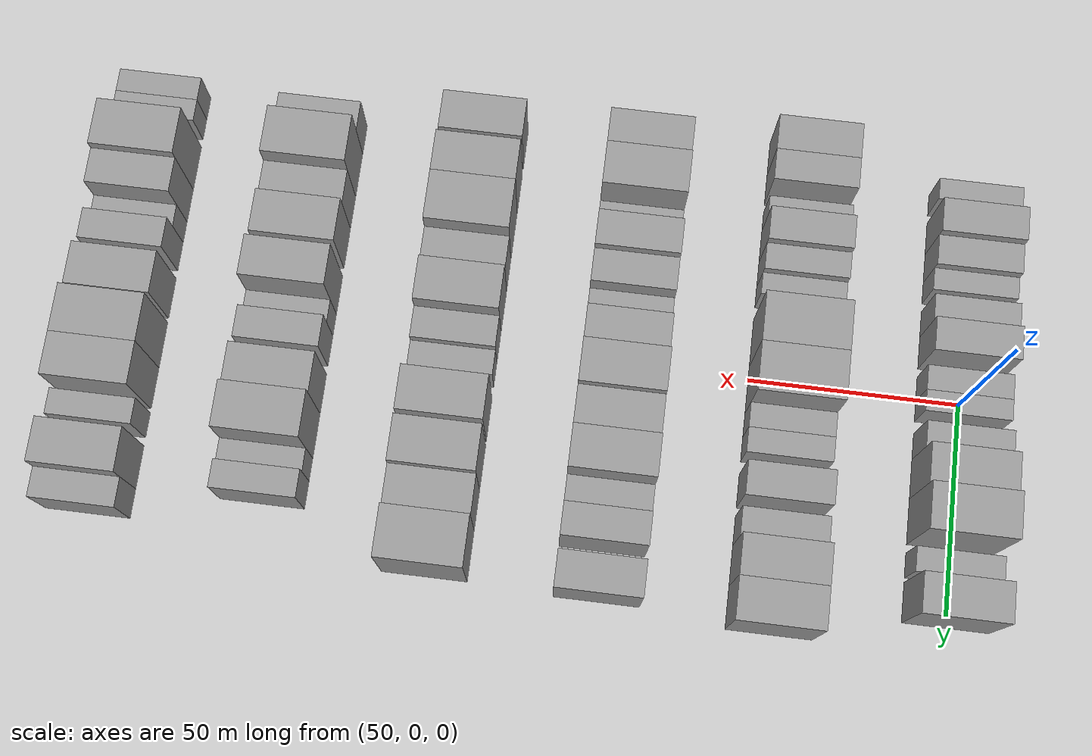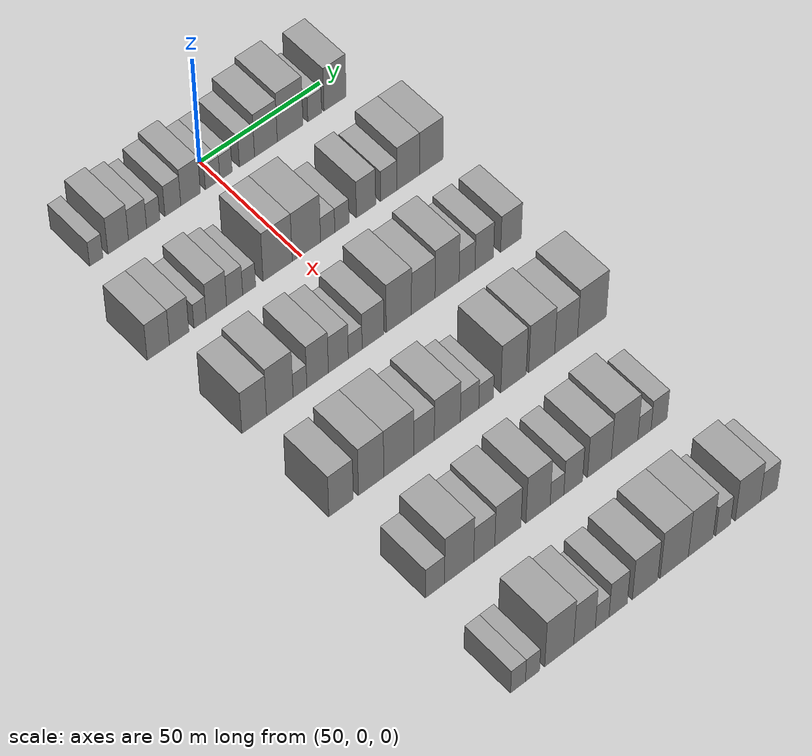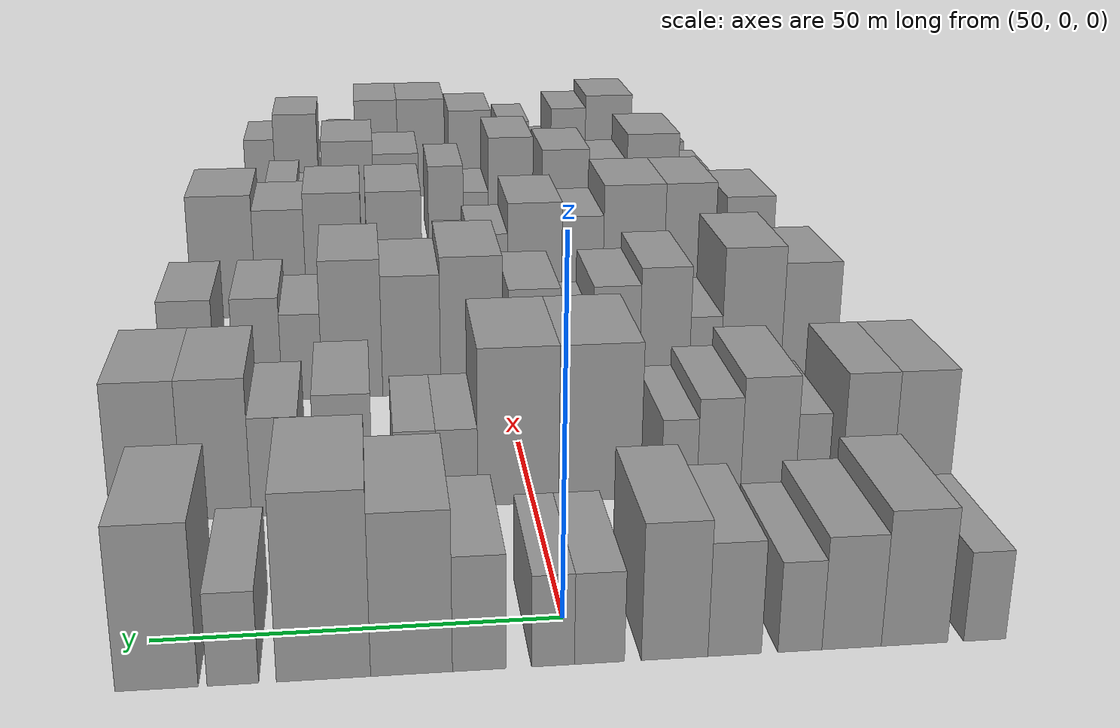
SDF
<sdf version="1.6">
 <world name="default">
  <model name="building_61">
   <static>1</static>
   <pose>50.0000 -49.7137 0 0.000000 0.000000 0.000000</pose>
   <link name="link">
    <pose>0 0 6.00 0 0 0</pose>
    <collision name="collision"><geometry><box><size>20.0000 5.2330 12.0000</size></box></geometry></collision>
    <visual name="visual">
     <cast_shadows>0</cast_shadows>
     <geometry><box><size>20.0000 5.2330 12.0000</size></box></geometry>
     <material>
      <script>
       <uri>model://grey_wall/materials/scripts</uri>
       <uri>model://grey_wall/materials/textures</uri>
       <name>vrc/grey_wall</name>
      </script>
     </material>
    </visual>
   </link>
  </model>
  <model name="building_62">
   <static>1</static>
   <pose>50.0000 -40.9994 0 0.000000 0.000000 0.000000</pose>
   <link name="link">
    <pose>0 0 9.00 0 0 0</pose>
    <collision name="collision"><geometry><box><size>20.0000 8.1956 18.0000</size></box></geometry></collision>
    <visual name="visual">
     <cast_shadows>0</cast_shadows>
     <geometry><box><size>20.0000 8.1956 18.0000</size></box></geometry>
     <material>
      <script>
       <uri>model://grey_wall/materials/scripts</uri>
       <uri>model://grey_wall/materials/textures</uri>
       <name>vrc/grey_wall</name>
      </script>
     </material>
    </visual>
   </link>
  </model>
  <model name="building_63">
   <static>1</static>
   <pose>50.0000 -33.2702 0 0.000000 0.000000 0.000000</pose>
   <link name="link">
    <pose>0 0 7.50 0 0 0</pose>
    <collision name="collision"><geometry><box><size>20.0000 7.2627 15.0000</size></box></geometry></collision>
    <visual name="visual">
     <cast_shadows>0</cast_shadows>
     <geometry><box><size>20.0000 7.2627 15.0000</size></box></geometry>
     <material>
      <script>
       <uri>model://grey_wall/materials/scripts</uri>
       <uri>model://grey_wall/materials/textures</uri>
       <name>vrc/grey_wall</name>
      </script>
     </material>
    </visual>
   </link>
  </model>
  <model name="building_64">
   <static>1</static>
   <pose>50.0000 -26.9642 0 0.000000 0.000000 0.000000</pose>
   <link name="link">
    <pose>0 0 6.00 0 0 0</pose>
    <collision name="collision"><geometry><box><size>20.0000 5.3493 12.0000</size></box></geometry></collision>
    <visual name="visual">
     <cast_shadows>0</cast_shadows>
     <geometry><box><size>20.0000 5.3493 12.0000</size></box></geometry>
     <material>
      <script>
       <uri>model://grey_wall/materials/scripts</uri>
       <uri>model://grey_wall/materials/textures</uri>
       <name>vrc/grey_wall</name>
      </script>
     </material>
    </visual>
   </link>
  </model>
  <model name="building_65">
   <static>1</static>
   <pose>50.0000 -19.0683 0 0.000000 0.000000 0.000000</pose>
   <link name="link">
    <pose>0 0 7.50 0 0 0</pose>
    <collision name="collision"><geometry><box><size>20.0000 6.4423 15.0000</size></box></geometry></collision>
    <visual name="visual">
     <cast_shadows>0</cast_shadows>
     <geometry><box><size>20.0000 6.4423 15.0000</size></box></geometry>
     <material>
      <script>
       <uri>model://grey_wall/materials/scripts</uri>
       <uri>model://grey_wall/materials/textures</uri>
       <name>vrc/grey_wall</name>
      </script>
     </material>
    </visual>
   </link>
  </model>
  <model name="building_66">
   <static>1</static>
   <pose>50.0000 -11.8717 0 0.000000 0.000000 0.000000</pose>
   <link name="link">
    <pose>0 0 9.00 0 0 0</pose>
    <collision name="collision"><geometry><box><size>20.0000 7.9509 18.0000</size></box></geometry></collision>
    <visual name="visual">
     <cast_shadows>0</cast_shadows>
     <geometry><box><size>20.0000 7.9509 18.0000</size></box></geometry>
     <material>
      <script>
       <uri>model://grey_wall/materials/scripts</uri>
       <uri>model://grey_wall/materials/textures</uri>
       <name>vrc/grey_wall</name>
      </script>
     </material>
    </visual>
   </link>
  </model>
  <model name="building_67">
   <static>1</static>
   <pose>50.0000 -2.9251 0 0.000000 0.000000 0.000000</pose>
   <link name="link">
    <pose>0 0 6.00 0 0 0</pose>
    <collision name="collision"><geometry><box><size>20.0000 5.9424 12.0000</size></box></geometry></collision>
    <visual name="visual">
     <cast_shadows>0</cast_shadows>
     <geometry><box><size>20.0000 5.9424 12.0000</size></box></geometry>
     <material>
      <script>
       <uri>model://grey_wall/materials/scripts</uri>
       <uri>model://grey_wall/materials/textures</uri>
       <name>vrc/grey_wall</name>
      </script>
     </material>
    </visual>
   </link>
  </model>
  <model name="building_68">
   <static>1</static>
   <pose>50.0000 2.5611 0 0.000000 0.000000 0.000000</pose>
   <link name="link">
    <pose>0 0 6.00 0 0 0</pose>
    <collision name="collision"><geometry><box><size>20.0000 5.0298 12.0000</size></box></geometry></collision>
    <visual name="visual">
     <cast_shadows>0</cast_shadows>
     <geometry><box><size>20.0000 5.0298 12.0000</size></box></geometry>
     <material>
      <script>
       <uri>model://grey_wall/materials/scripts</uri>
       <uri>model://grey_wall/materials/textures</uri>
       <name>vrc/grey_wall</name>
      </script>
     </material>
    </visual>
   </link>
  </model>
  <model name="building_69">
   <static>1</static>
   <pose>50.0000 11.1921 0 0.000000 0.000000 0.000000</pose>
   <link name="link">
    <pose>0 0 7.50 0 0 0</pose>
    <collision name="collision"><geometry><box><size>20.0000 6.2323 15.0000</size></box></geometry></collision>
    <visual name="visual">
     <cast_shadows>0</cast_shadows>
     <geometry><box><size>20.0000 6.2323 15.0000</size></box></geometry>
     <material>
      <script>
       <uri>model://grey_wall/materials/scripts</uri>
       <uri>model://grey_wall/materials/textures</uri>
       <name>vrc/grey_wall</name>
      </script>
     </material>
    </visual>
   </link>
  </model>
  <model name="building_70">
   <static>1</static>
   <pose>50.0000 19.0318 0 0.000000 0.000000 0.000000</pose>
   <link name="link">
    <pose>0 0 10.50 0 0 0</pose>
    <collision name="collision"><geometry><box><size>20.0000 9.4470 21.0000</size></box></geometry></collision>
    <visual name="visual">
     <cast_shadows>0</cast_shadows>
     <geometry><box><size>20.0000 9.4470 21.0000</size></box></geometry>
     <material>
      <script>
       <uri>model://grey_wall/materials/scripts</uri>
       <uri>model://grey_wall/materials/textures</uri>
       <name>vrc/grey_wall</name>
      </script>
     </material>
    </visual>
   </link>
  </model>
  <model name="building_71">
   <static>1</static>
   <pose>50.0000 29.1392 0 0.000000 0.000000 0.000000</pose>
   <link name="link">
    <pose>0 0 12.00 0 0 0</pose>
    <collision name="collision"><geometry><box><size>20.0000 10.7678 24.0000</size></box></geometry></collision>
    <visual name="visual">
     <cast_shadows>0</cast_shadows>
     <geometry><box><size>20.0000 10.7678 24.0000</size></box></geometry>
     <material>
      <script>
       <uri>model://grey_wall/materials/scripts</uri>
       <uri>model://grey_wall/materials/textures</uri>
       <name>vrc/grey_wall</name>
      </script>
     </material>
    </visual>
   </link>
  </model>
  <model name="building_72">
   <static>1</static>
   <pose>50.0000 39.4350 0 0.000000 0.000000 0.000000</pose>
   <link name="link">
    <pose>0 0 6.00 0 0 0</pose>
    <collision name="collision"><geometry><box><size>20.0000 5.8238 12.0000</size></box></geometry></collision>
    <visual name="visual">
     <cast_shadows>0</cast_shadows>
     <geometry><box><size>20.0000 5.8238 12.0000</size></box></geometry>
     <material>
      <script>
       <uri>model://grey_wall/materials/scripts</uri>
       <uri>model://grey_wall/materials/textures</uri>
       <name>vrc/grey_wall</name>
      </script>
     </material>
    </visual>
   </link>
  </model>
  <model name="building_73">
   <static>1</static>
   <pose>50.0000 48.0004 0 0.000000 0.000000 0.000000</pose>
   <link name="link">
    <pose>0 0 10.50 0 0 0</pose>
    <collision name="collision"><geometry><box><size>20.0000 9.3071 21.0000</size></box></geometry></collision>
    <visual name="visual">
     <cast_shadows>0</cast_shadows>
     <geometry><box><size>20.0000 9.3071 21.0000</size></box></geometry>
     <material>
      <script>
       <uri>model://grey_wall/materials/scripts</uri>
       <uri>model://grey_wall/materials/textures</uri>
       <name>vrc/grey_wall</name>
      </script>
     </material>
    </visual>
   </link>
  </model>
  <model name="building_201">
   <static>1</static>
   <pose>90.0000 -56.9753 0 0.000000 0.000000 0.000000</pose>
   <link name="link">
    <pose>0 0 9.00 0 0 0</pose>
    <collision name="collision"><geometry><box><size>20.0000 8.7336 18.0000</size></box></geometry></collision>
    <visual name="visual">
     <cast_shadows>0</cast_shadows>
     <geometry><box><size>20.0000 8.7336 18.0000</size></box></geometry>
     <material>
      <script>
       <uri>model://grey_wall/materials/scripts</uri>
       <uri>model://grey_wall/materials/textures</uri>
       <name>vrc/grey_wall</name>
      </script>
     </material>
    </visual>
   </link>
  </model>
  <model name="building_202">
   <static>1</static>
   <pose>90.0000 -48.7742 0 0.000000 0.000000 0.000000</pose>
   <link name="link">
    <pose>0 0 9.00 0 0 0</pose>
    <collision name="collision"><geometry><box><size>20.0000 7.6685 18.0000</size></box></geometry></collision>
    <visual name="visual">
     <cast_shadows>0</cast_shadows>
     <geometry><box><size>20.0000 7.6685 18.0000</size></box></geometry>
     <material>
      <script>
       <uri>model://grey_wall/materials/scripts</uri>
       <uri>model://grey_wall/materials/textures</uri>
       <name>vrc/grey_wall</name>
      </script>
     </material>
    </visual>
   </link>
  </model>
  <model name="building_203">
   <static>1</static>
   <pose>90.0000 -40.5133 0 0.000000 0.000000 0.000000</pose>
   <link name="link">
    <pose>0 0 6.00 0 0 0</pose>
    <collision name="collision"><geometry><box><size>20.0000 4.8533 12.0000</size></box></geometry></collision>
    <visual name="visual">
     <cast_shadows>0</cast_shadows>
     <geometry><box><size>20.0000 4.8533 12.0000</size></box></geometry>
     <material>
      <script>
       <uri>model://grey_wall/materials/scripts</uri>
       <uri>model://grey_wall/materials/textures</uri>
       <name>vrc/grey_wall</name>
      </script>
     </material>
    </visual>
   </link>
  </model>
  <model name="building_204">
   <static>1</static>
   <pose>90.0000 -34.0254 0 0.000000 0.000000 0.000000</pose>
   <link name="link">
    <pose>0 0 9.00 0 0 0</pose>
    <collision name="collision"><geometry><box><size>20.0000 8.1226 18.0000</size></box></geometry></collision>
    <visual name="visual">
     <cast_shadows>0</cast_shadows>
     <geometry><box><size>20.0000 8.1226 18.0000</size></box></geometry>
     <material>
      <script>
       <uri>model://grey_wall/materials/scripts</uri>
       <uri>model://grey_wall/materials/textures</uri>
       <name>vrc/grey_wall</name>
      </script>
     </material>
    </visual>
   </link>
  </model>
  <model name="building_205">
   <static>1</static>
   <pose>90.0000 -26.7587 0 0.000000 0.000000 0.000000</pose>
   <link name="link">
    <pose>0 0 7.50 0 0 0</pose>
    <collision name="collision"><geometry><box><size>20.0000 6.4108 15.0000</size></box></geometry></collision>
    <visual name="visual">
     <cast_shadows>0</cast_shadows>
     <geometry><box><size>20.0000 6.4108 15.0000</size></box></geometry>
     <material>
      <script>
       <uri>model://grey_wall/materials/scripts</uri>
       <uri>model://grey_wall/materials/textures</uri>
       <name>vrc/grey_wall</name>
      </script>
     </material>
    </visual>
   </link>
  </model>
  <model name="building_206">
   <static>1</static>
   <pose>90.0000 -20.9501 0 0.000000 0.000000 0.000000</pose>
   <link name="link">
    <pose>0 0 6.00 0 0 0</pose>
    <collision name="collision"><geometry><box><size>20.0000 5.2064 12.0000</size></box></geometry></collision>
    <visual name="visual">
     <cast_shadows>0</cast_shadows>
     <geometry><box><size>20.0000 5.2064 12.0000</size></box></geometry>
     <material>
      <script>
       <uri>model://grey_wall/materials/scripts</uri>
       <uri>model://grey_wall/materials/textures</uri>
       <name>vrc/grey_wall</name>
      </script>
     </material>
    </visual>
   </link>
  </model>
  <model name="building_207">
   <static>1</static>
   <pose>90.0000 -9.4413 0 0.000000 0.000000 0.000000</pose>
   <link name="link">
    <pose>0 0 12.00 0 0 0</pose>
    <collision name="collision"><geometry><box><size>20.0000 11.8111 24.0000</size></box></geometry></collision>
    <visual name="visual">
     <cast_shadows>0</cast_shadows>
     <geometry><box><size>20.0000 11.8111 24.0000</size></box></geometry>
     <material>
      <script>
       <uri>model://grey_wall/materials/scripts</uri>
       <uri>model://grey_wall/materials/textures</uri>
       <name>vrc/grey_wall</name>
      </script>
     </material>
    </visual>
   </link>
  </model>
  <model name="building_208">
   <static>1</static>
   <pose>90.0000 2.2526 0 0.000000 0.000000 0.000000</pose>
   <link name="link">
    <pose>0 0 12.00 0 0 0</pose>
    <collision name="collision"><geometry><box><size>20.0000 11.5766 24.0000</size></box></geometry></collision>
    <visual name="visual">
     <cast_shadows>0</cast_shadows>
     <geometry><box><size>20.0000 11.5766 24.0000</size></box></geometry>
     <material>
      <script>
       <uri>model://grey_wall/materials/scripts</uri>
       <uri>model://grey_wall/materials/textures</uri>
       <name>vrc/grey_wall</name>
      </script>
     </material>
    </visual>
   </link>
  </model>
  <model name="building_209">
   <static>1</static>
   <pose>90.0000 10.9631 0 0.000000 0.000000 0.000000</pose>
   <link name="link">
    <pose>0 0 6.00 0 0 0</pose>
    <collision name="collision"><geometry><box><size>20.0000 5.8444 12.0000</size></box></geometry></collision>
    <visual name="visual">
     <cast_shadows>0</cast_shadows>
     <geometry><box><size>20.0000 5.8444 12.0000</size></box></geometry>
     <material>
      <script>
       <uri>model://grey_wall/materials/scripts</uri>
       <uri>model://grey_wall/materials/textures</uri>
       <name>vrc/grey_wall</name>
      </script>
     </material>
    </visual>
   </link>
  </model>
  <model name="building_210">
   <static>1</static>
   <pose>90.0000 16.8318 0 0.000000 0.000000 0.000000</pose>
   <link name="link">
    <pose>0 0 6.00 0 0 0</pose>
    <collision name="collision"><geometry><box><size>20.0000 5.8929 12.0000</size></box></geometry></collision>
    <visual name="visual">
     <cast_shadows>0</cast_shadows>
     <geometry><box><size>20.0000 5.8929 12.0000</size></box></geometry>
     <material>
      <script>
       <uri>model://grey_wall/materials/scripts</uri>
       <uri>model://grey_wall/materials/textures</uri>
       <name>vrc/grey_wall</name>
      </script>
     </material>
    </visual>
   </link>
  </model>
  <model name="building_211">
   <static>1</static>
   <pose>90.0000 26.8018 0 0.000000 0.000000 0.000000</pose>
   <link name="link">
    <pose>0 0 9.00 0 0 0</pose>
    <collision name="collision"><geometry><box><size>20.0000 8.0470 18.0000</size></box></geometry></collision>
    <visual name="visual">
     <cast_shadows>0</cast_shadows>
     <geometry><box><size>20.0000 8.0470 18.0000</size></box></geometry>
     <material>
      <script>
       <uri>model://grey_wall/materials/scripts</uri>
       <uri>model://grey_wall/materials/textures</uri>
       <name>vrc/grey_wall</name>
      </script>
     </material>
    </visual>
   </link>
  </model>
  <model name="building_212">
   <static>1</static>
   <pose>90.0000 36.2818 0 0.000000 0.000000 0.000000</pose>
   <link name="link">
    <pose>0 0 7.50 0 0 0</pose>
    <collision name="collision"><geometry><box><size>20.0000 6.9131 15.0000</size></box></geometry></collision>
    <visual name="visual">
     <cast_shadows>0</cast_shadows>
     <geometry><box><size>20.0000 6.9131 15.0000</size></box></geometry>
     <material>
      <script>
       <uri>model://grey_wall/materials/scripts</uri>
       <uri>model://grey_wall/materials/textures</uri>
       <name>vrc/grey_wall</name>
      </script>
     </material>
    </visual>
   </link>
  </model>
  <model name="building_213">
   <static>1</static>
   <pose>90.0000 44.4817 0 0.000000 0.000000 0.000000</pose>
   <link name="link">
    <pose>0 0 10.50 0 0 0</pose>
    <collision name="collision"><geometry><box><size>20.0000 9.4865 21.0000</size></box></geometry></collision>
    <visual name="visual">
     <cast_shadows>0</cast_shadows>
     <geometry><box><size>20.0000 9.4865 21.0000</size></box></geometry>
     <material>
      <script>
       <uri>model://grey_wall/materials/scripts</uri>
       <uri>model://grey_wall/materials/textures</uri>
       <name>vrc/grey_wall</name>
      </script>
     </material>
    </visual>
   </link>
  </model>
  <model name="building_214">
   <static>1</static>
   <pose>90.0000 54.1620 0 0.000000 0.000000 0.000000</pose>
   <link name="link">
    <pose>0 0 10.50 0 0 0</pose>
    <collision name="collision"><geometry><box><size>20.0000 9.8741 21.0000</size></box></geometry></collision>
    <visual name="visual">
     <cast_shadows>0</cast_shadows>
     <geometry><box><size>20.0000 9.8741 21.0000</size></box></geometry>
     <material>
      <script>
       <uri>model://grey_wall/materials/scripts</uri>
       <uri>model://grey_wall/materials/textures</uri>
       <name>vrc/grey_wall</name>
      </script>
     </material>
    </visual>
   </link>
  </model>
  <model name="building_339">
   <static>1</static>
   <pose>130.0000 -52.0006 0 0.000000 0.000000 0.000000</pose>
   <link name="link">
    <pose>0 0 10.50 0 0 0</pose>
    <collision name="collision"><geometry><box><size>20.0000 9.7025 21.0000</size></box></geometry></collision>
    <visual name="visual">
     <cast_shadows>0</cast_shadows>
     <geometry><box><size>20.0000 9.7025 21.0000</size></box></geometry>
     <material>
      <script>
       <uri>model://grey_wall/materials/scripts</uri>
       <uri>model://grey_wall/materials/textures</uri>
       <name>vrc/grey_wall</name>
      </script>
     </material>
    </visual>
   </link>
  </model>
  <model name="building_340">
   <static>1</static>
   <pose>130.0000 -41.9264 0 0.000000 0.000000 0.000000</pose>
   <link name="link">
    <pose>0 0 12.00 0 0 0</pose>
    <collision name="collision"><geometry><box><size>20.0000 10.4460 24.0000</size></box></geometry></collision>
    <visual name="visual">
     <cast_shadows>0</cast_shadows>
     <geometry><box><size>20.0000 10.4460 24.0000</size></box></geometry>
     <material>
      <script>
       <uri>model://grey_wall/materials/scripts</uri>
       <uri>model://grey_wall/materials/textures</uri>
       <name>vrc/grey_wall</name>
      </script>
     </material>
    </visual>
   </link>
  </model>
  <model name="building_341">
   <static>1</static>
   <pose>130.0000 -33.9825 0 0.000000 0.000000 0.000000</pose>
   <link name="link">
    <pose>0 0 6.00 0 0 0</pose>
    <collision name="collision"><geometry><box><size>20.0000 5.4418 12.0000</size></box></geometry></collision>
    <visual name="visual">
     <cast_shadows>0</cast_shadows>
     <geometry><box><size>20.0000 5.4418 12.0000</size></box></geometry>
     <material>
      <script>
       <uri>model://grey_wall/materials/scripts</uri>
       <uri>model://grey_wall/materials/textures</uri>
       <name>vrc/grey_wall</name>
      </script>
     </material>
    </visual>
   </link>
  </model>
  <model name="building_342">
   <static>1</static>
   <pose>130.0000 -26.9742 0 0.000000 0.000000 0.000000</pose>
   <link name="link">
    <pose>0 0 10.50 0 0 0</pose>
    <collision name="collision"><geometry><box><size>20.0000 8.5747 21.0000</size></box></geometry></collision>
    <visual name="visual">
     <cast_shadows>0</cast_shadows>
     <geometry><box><size>20.0000 8.5747 21.0000</size></box></geometry>
     <material>
      <script>
       <uri>model://grey_wall/materials/scripts</uri>
       <uri>model://grey_wall/materials/textures</uri>
       <name>vrc/grey_wall</name>
      </script>
     </material>
    </visual>
   </link>
  </model>
  <model name="building_343">
   <static>1</static>
   <pose>130.0000 -18.7017 0 0.000000 0.000000 0.000000</pose>
   <link name="link">
    <pose>0 0 9.00 0 0 0</pose>
    <collision name="collision"><geometry><box><size>20.0000 7.9704 18.0000</size></box></geometry></collision>
    <visual name="visual">
     <cast_shadows>0</cast_shadows>
     <geometry><box><size>20.0000 7.9704 18.0000</size></box></geometry>
     <material>
      <script>
       <uri>model://grey_wall/materials/scripts</uri>
       <uri>model://grey_wall/materials/textures</uri>
       <name>vrc/grey_wall</name>
      </script>
     </material>
    </visual>
   </link>
  </model>
  <model name="building_344">
   <static>1</static>
   <pose>130.0000 -11.9334 0 0.000000 0.000000 0.000000</pose>
   <link name="link">
    <pose>0 0 6.00 0 0 0</pose>
    <collision name="collision"><geometry><box><size>20.0000 5.5663 12.0000</size></box></geometry></collision>
    <visual name="visual">
     <cast_shadows>0</cast_shadows>
     <geometry><box><size>20.0000 5.5663 12.0000</size></box></geometry>
     <material>
      <script>
       <uri>model://grey_wall/materials/scripts</uri>
       <uri>model://grey_wall/materials/textures</uri>
       <name>vrc/grey_wall</name>
      </script>
     </material>
    </visual>
   </link>
  </model>
  <model name="building_345">
   <static>1</static>
   <pose>130.0000 -4.7817 0 0.000000 0.000000 0.000000</pose>
   <link name="link">
    <pose>0 0 9.00 0 0 0</pose>
    <collision name="collision"><geometry><box><size>20.0000 8.7371 18.0000</size></box></geometry></collision>
    <visual name="visual">
     <cast_shadows>0</cast_shadows>
     <geometry><box><size>20.0000 8.7371 18.0000</size></box></geometry>
     <material>
      <script>
       <uri>model://grey_wall/materials/scripts</uri>
       <uri>model://grey_wall/materials/textures</uri>
       <name>vrc/grey_wall</name>
      </script>
     </material>
    </visual>
   </link>
  </model>
  <model name="building_346">
   <static>1</static>
   <pose>130.0000 5.7412 0 0.000000 0.000000 0.000000</pose>
   <link name="link">
    <pose>0 0 12.00 0 0 0</pose>
    <collision name="collision"><geometry><box><size>20.0000 10.3087 24.0000</size></box></geometry></collision>
    <visual name="visual">
     <cast_shadows>0</cast_shadows>
     <geometry><box><size>20.0000 10.3087 24.0000</size></box></geometry>
     <material>
      <script>
       <uri>model://grey_wall/materials/scripts</uri>
       <uri>model://grey_wall/materials/textures</uri>
       <name>vrc/grey_wall</name>
      </script>
     </material>
    </visual>
   </link>
  </model>
  <model name="building_347">
   <static>1</static>
   <pose>130.0000 15.7295 0 0.000000 0.000000 0.000000</pose>
   <link name="link">
    <pose>0 0 10.50 0 0 0</pose>
    <collision name="collision"><geometry><box><size>20.0000 9.6678 21.0000</size></box></geometry></collision>
    <visual name="visual">
     <cast_shadows>0</cast_shadows>
     <geometry><box><size>20.0000 9.6678 21.0000</size></box></geometry>
     <material>
      <script>
       <uri>model://grey_wall/materials/scripts</uri>
       <uri>model://grey_wall/materials/textures</uri>
       <name>vrc/grey_wall</name>
      </script>
     </material>
    </visual>
   </link>
  </model>
  <model name="building_348">
   <static>1</static>
   <pose>130.0000 25.5484 0 0.000000 0.000000 0.000000</pose>
   <link name="link">
    <pose>0 0 12.00 0 0 0</pose>
    <collision name="collision"><geometry><box><size>20.0000 9.9700 24.0000</size></box></geometry></collision>
    <visual name="visual">
     <cast_shadows>0</cast_shadows>
     <geometry><box><size>20.0000 9.9700 24.0000</size></box></geometry>
     <material>
      <script>
       <uri>model://grey_wall/materials/scripts</uri>
       <uri>model://grey_wall/materials/textures</uri>
       <name>vrc/grey_wall</name>
      </script>
     </material>
    </visual>
   </link>
  </model>
  <model name="building_349">
   <static>1</static>
   <pose>130.0000 33.8254 0 0.000000 0.000000 0.000000</pose>
   <link name="link">
    <pose>0 0 7.50 0 0 0</pose>
    <collision name="collision"><geometry><box><size>20.0000 6.5841 15.0000</size></box></geometry></collision>
    <visual name="visual">
     <cast_shadows>0</cast_shadows>
     <geometry><box><size>20.0000 6.5841 15.0000</size></box></geometry>
     <material>
      <script>
       <uri>model://grey_wall/materials/scripts</uri>
       <uri>model://grey_wall/materials/textures</uri>
       <name>vrc/grey_wall</name>
      </script>
     </material>
    </visual>
   </link>
  </model>
  <model name="building_350">
   <static>1</static>
   <pose>130.0000 40.9963 0 0.000000 0.000000 0.000000</pose>
   <link name="link">
    <pose>0 0 9.00 0 0 0</pose>
    <collision name="collision"><geometry><box><size>20.0000 7.7577 18.0000</size></box></geometry></collision>
    <visual name="visual">
     <cast_shadows>0</cast_shadows>
     <geometry><box><size>20.0000 7.7577 18.0000</size></box></geometry>
     <material>
      <script>
       <uri>model://grey_wall/materials/scripts</uri>
       <uri>model://grey_wall/materials/textures</uri>
       <name>vrc/grey_wall</name>
      </script>
     </material>
    </visual>
   </link>
  </model>
  <model name="building_351">
   <static>1</static>
   <pose>130.0000 52.2094 0 0.000000 0.000000 0.000000</pose>
   <link name="link">
    <pose>0 0 9.00 0 0 0</pose>
    <collision name="collision"><geometry><box><size>20.0000 8.6685 18.0000</size></box></geometry></collision>
    <visual name="visual">
     <cast_shadows>0</cast_shadows>
     <geometry><box><size>20.0000 8.6685 18.0000</size></box></geometry>
     <material>
      <script>
       <uri>model://grey_wall/materials/scripts</uri>
       <uri>model://grey_wall/materials/textures</uri>
       <name>vrc/grey_wall</name>
      </script>
     </material>
    </visual>
   </link>
  </model>
  <model name="building_480">
   <static>1</static>
   <pose>170.0000 -51.7140 0 0.000000 0.000000 0.000000</pose>
   <link name="link">
    <pose>0 0 10.50 0 0 0</pose>
    <collision name="collision"><geometry><box><size>20.0000 9.5417 21.0000</size></box></geometry></collision>
    <visual name="visual">
     <cast_shadows>0</cast_shadows>
     <geometry><box><size>20.0000 9.5417 21.0000</size></box></geometry>
     <material>
      <script>
       <uri>model://grey_wall/materials/scripts</uri>
       <uri>model://grey_wall/materials/textures</uri>
       <name>vrc/grey_wall</name>
      </script>
     </material>
    </visual>
   </link>
  </model>
  <model name="building_481">
   <static>1</static>
   <pose>170.0000 -39.9706 0 0.000000 0.000000 0.000000</pose>
   <link name="link">
    <pose>0 0 12.00 0 0 0</pose>
    <collision name="collision"><geometry><box><size>20.0000 9.9451 24.0000</size></box></geometry></collision>
    <visual name="visual">
     <cast_shadows>0</cast_shadows>
     <geometry><box><size>20.0000 9.9451 24.0000</size></box></geometry>
     <material>
      <script>
       <uri>model://grey_wall/materials/scripts</uri>
       <uri>model://grey_wall/materials/textures</uri>
       <name>vrc/grey_wall</name>
      </script>
     </material>
    </visual>
   </link>
  </model>
  <model name="building_482">
   <static>1</static>
   <pose>170.0000 -29.0029 0 0.000000 0.000000 0.000000</pose>
   <link name="link">
    <pose>0 0 12.00 0 0 0</pose>
    <collision name="collision"><geometry><box><size>20.0000 11.9903 24.0000</size></box></geometry></collision>
    <visual name="visual">
     <cast_shadows>0</cast_shadows>
     <geometry><box><size>20.0000 11.9903 24.0000</size></box></geometry>
     <material>
      <script>
       <uri>model://grey_wall/materials/scripts</uri>
       <uri>model://grey_wall/materials/textures</uri>
       <name>vrc/grey_wall</name>
      </script>
     </material>
    </visual>
   </link>
  </model>
  <model name="building_483">
   <static>1</static>
   <pose>170.0000 -18.9657 0 0.000000 0.000000 0.000000</pose>
   <link name="link">
    <pose>0 0 9.00 0 0 0</pose>
    <collision name="collision"><geometry><box><size>20.0000 8.0840 18.0000</size></box></geometry></collision>
    <visual name="visual">
     <cast_shadows>0</cast_shadows>
     <geometry><box><size>20.0000 8.0840 18.0000</size></box></geometry>
     <material>
      <script>
       <uri>model://grey_wall/materials/scripts</uri>
       <uri>model://grey_wall/materials/textures</uri>
       <name>vrc/grey_wall</name>
      </script>
     </material>
    </visual>
   </link>
  </model>
  <model name="building_484">
   <static>1</static>
   <pose>170.0000 -9.6862 0 0.000000 0.000000 0.000000</pose>
   <link name="link">
    <pose>0 0 10.50 0 0 0</pose>
    <collision name="collision"><geometry><box><size>20.0000 10.4750 21.0000</size></box></geometry></collision>
    <visual name="visual">
     <cast_shadows>0</cast_shadows>
     <geometry><box><size>20.0000 10.4750 21.0000</size></box></geometry>
     <material>
      <script>
       <uri>model://grey_wall/materials/scripts</uri>
       <uri>model://grey_wall/materials/textures</uri>
       <name>vrc/grey_wall</name>
      </script>
     </material>
    </visual>
   </link>
  </model>
  <model name="building_485">
   <static>1</static>
   <pose>170.0000 -0.7146 0 0.000000 0.000000 0.000000</pose>
   <link name="link">
    <pose>0 0 7.50 0 0 0</pose>
    <collision name="collision"><geometry><box><size>20.0000 7.4684 15.0000</size></box></geometry></collision>
    <visual name="visual">
     <cast_shadows>0</cast_shadows>
     <geometry><box><size>20.0000 7.4684 15.0000</size></box></geometry>
     <material>
      <script>
       <uri>model://grey_wall/materials/scripts</uri>
       <uri>model://grey_wall/materials/textures</uri>
       <name>vrc/grey_wall</name>
      </script>
     </material>
    </visual>
   </link>
  </model>
  <model name="building_486">
   <static>1</static>
   <pose>170.0000 5.9937 0 0.000000 0.000000 0.000000</pose>
   <link name="link">
    <pose>0 0 6.00 0 0 0</pose>
    <collision name="collision"><geometry><box><size>20.0000 5.9483 12.0000</size></box></geometry></collision>
    <visual name="visual">
     <cast_shadows>0</cast_shadows>
     <geometry><box><size>20.0000 5.9483 12.0000</size></box></geometry>
     <material>
      <script>
       <uri>model://grey_wall/materials/scripts</uri>
       <uri>model://grey_wall/materials/textures</uri>
       <name>vrc/grey_wall</name>
      </script>
     </material>
    </visual>
   </link>
  </model>
  <model name="building_487">
   <static>1</static>
   <pose>170.0000 17.1739 0 0.000000 0.000000 0.000000</pose>
   <link name="link">
    <pose>0 0 12.00 0 0 0</pose>
    <collision name="collision"><geometry><box><size>20.0000 10.4120 24.0000</size></box></geometry></collision>
    <visual name="visual">
     <cast_shadows>0</cast_shadows>
     <geometry><box><size>20.0000 10.4120 24.0000</size></box></geometry>
     <material>
      <script>
       <uri>model://grey_wall/materials/scripts</uri>
       <uri>model://grey_wall/materials/textures</uri>
       <name>vrc/grey_wall</name>
      </script>
     </material>
    </visual>
   </link>
  </model>
  <model name="building_488">
   <static>1</static>
   <pose>170.0000 28.7469 0 0.000000 0.000000 0.000000</pose>
   <link name="link">
    <pose>0 0 12.00 0 0 0</pose>
    <collision name="collision"><geometry><box><size>20.0000 10.7340 24.0000</size></box></geometry></collision>
    <visual name="visual">
     <cast_shadows>0</cast_shadows>
     <geometry><box><size>20.0000 10.7340 24.0000</size></box></geometry>
     <material>
      <script>
       <uri>model://grey_wall/materials/scripts</uri>
       <uri>model://grey_wall/materials/textures</uri>
       <name>vrc/grey_wall</name>
      </script>
     </material>
    </visual>
   </link>
  </model>
  <model name="building_489">
   <static>1</static>
   <pose>170.0000 38.8839 0 0.000000 0.000000 0.000000</pose>
   <link name="link">
    <pose>0 0 10.50 0 0 0</pose>
    <collision name="collision"><geometry><box><size>20.0000 9.5401 21.0000</size></box></geometry></collision>
    <visual name="visual">
     <cast_shadows>0</cast_shadows>
     <geometry><box><size>20.0000 9.5401 21.0000</size></box></geometry>
     <material>
      <script>
       <uri>model://grey_wall/materials/scripts</uri>
       <uri>model://grey_wall/materials/textures</uri>
       <name>vrc/grey_wall</name>
      </script>
     </material>
    </visual>
   </link>
  </model>
  <model name="building_490">
   <static>1</static>
   <pose>170.0000 49.6444 0 0.000000 0.000000 0.000000</pose>
   <link name="link">
    <pose>0 0 12.00 0 0 0</pose>
    <collision name="collision"><geometry><box><size>20.0000 11.9809 24.0000</size></box></geometry></collision>
    <visual name="visual">
     <cast_shadows>0</cast_shadows>
     <geometry><box><size>20.0000 11.9809 24.0000</size></box></geometry>
     <material>
      <script>
       <uri>model://grey_wall/materials/scripts</uri>
       <uri>model://grey_wall/materials/textures</uri>
       <name>vrc/grey_wall</name>
      </script>
     </material>
    </visual>
   </link>
  </model>
  <model name="building_607">
   <static>1</static>
   <pose>210.0000 -49.8450 0 0.000000 0.000000 0.000000</pose>
   <link name="link">
    <pose>0 0 7.50 0 0 0</pose>
    <collision name="collision"><geometry><box><size>20.0000 7.4062 15.0000</size></box></geometry></collision>
    <visual name="visual">
     <cast_shadows>0</cast_shadows>
     <geometry><box><size>20.0000 7.4062 15.0000</size></box></geometry>
     <material>
      <script>
       <uri>model://grey_wall/materials/scripts</uri>
       <uri>model://grey_wall/materials/textures</uri>
       <name>vrc/grey_wall</name>
      </script>
     </material>
    </visual>
   </link>
  </model>
  <model name="building_608">
   <static>1</static>
   <pose>210.0000 -40.4196 0 0.000000 0.000000 0.000000</pose>
   <link name="link">
    <pose>0 0 12.00 0 0 0</pose>
    <collision name="collision"><geometry><box><size>20.0000 11.4447 24.0000</size></box></geometry></collision>
    <visual name="visual">
     <cast_shadows>0</cast_shadows>
     <geometry><box><size>20.0000 11.4447 24.0000</size></box></geometry>
     <material>
      <script>
       <uri>model://grey_wall/materials/scripts</uri>
       <uri>model://grey_wall/materials/textures</uri>
       <name>vrc/grey_wall</name>
      </script>
     </material>
    </visual>
   </link>
  </model>
  <model name="building_609">
   <static>1</static>
   <pose>210.0000 -30.5512 0 0.000000 0.000000 0.000000</pose>
   <link name="link">
    <pose>0 0 9.00 0 0 0</pose>
    <collision name="collision"><geometry><box><size>20.0000 8.2920 18.0000</size></box></geometry></collision>
    <visual name="visual">
     <cast_shadows>0</cast_shadows>
     <geometry><box><size>20.0000 8.2920 18.0000</size></box></geometry>
     <material>
      <script>
       <uri>model://grey_wall/materials/scripts</uri>
       <uri>model://grey_wall/materials/textures</uri>
       <name>vrc/grey_wall</name>
      </script>
     </material>
    </visual>
   </link>
  </model>
  <model name="building_610">
   <static>1</static>
   <pose>210.0000 -21.2179 0 0.000000 0.000000 0.000000</pose>
   <link name="link">
    <pose>0 0 10.50 0 0 0</pose>
    <collision name="collision"><geometry><box><size>20.0000 10.3747 21.0000</size></box></geometry></collision>
    <visual name="visual">
     <cast_shadows>0</cast_shadows>
     <geometry><box><size>20.0000 10.3747 21.0000</size></box></geometry>
     <material>
      <script>
       <uri>model://grey_wall/materials/scripts</uri>
       <uri>model://grey_wall/materials/textures</uri>
       <name>vrc/grey_wall</name>
      </script>
     </material>
    </visual>
   </link>
  </model>
  <model name="building_611">
   <static>1</static>
   <pose>210.0000 -9.1842 0 0.000000 0.000000 0.000000</pose>
   <link name="link">
    <pose>0 0 12.00 0 0 0</pose>
    <collision name="collision"><geometry><box><size>20.0000 9.6926 24.0000</size></box></geometry></collision>
    <visual name="visual">
     <cast_shadows>0</cast_shadows>
     <geometry><box><size>20.0000 9.6926 24.0000</size></box></geometry>
     <material>
      <script>
       <uri>model://grey_wall/materials/scripts</uri>
       <uri>model://grey_wall/materials/textures</uri>
       <name>vrc/grey_wall</name>
      </script>
     </material>
    </visual>
   </link>
  </model>
  <model name="building_612">
   <static>1</static>
   <pose>210.0000 -1.5900 0 0.000000 0.000000 0.000000</pose>
   <link name="link">
    <pose>0 0 6.00 0 0 0</pose>
    <collision name="collision"><geometry><box><size>20.0000 5.4959 12.0000</size></box></geometry></collision>
    <visual name="visual">
     <cast_shadows>0</cast_shadows>
     <geometry><box><size>20.0000 5.4959 12.0000</size></box></geometry>
     <material>
      <script>
       <uri>model://grey_wall/materials/scripts</uri>
       <uri>model://grey_wall/materials/textures</uri>
       <name>vrc/grey_wall</name>
      </script>
     </material>
    </visual>
   </link>
  </model>
  <model name="building_613">
   <static>1</static>
   <pose>210.0000 4.9634 0 0.000000 0.000000 0.000000</pose>
   <link name="link">
    <pose>0 0 9.00 0 0 0</pose>
    <collision name="collision"><geometry><box><size>20.0000 7.6109 18.0000</size></box></geometry></collision>
    <visual name="visual">
     <cast_shadows>0</cast_shadows>
     <geometry><box><size>20.0000 7.6109 18.0000</size></box></geometry>
     <material>
      <script>
       <uri>model://grey_wall/materials/scripts</uri>
       <uri>model://grey_wall/materials/textures</uri>
       <name>vrc/grey_wall</name>
      </script>
     </material>
    </visual>
   </link>
  </model>
  <model name="building_614">
   <static>1</static>
   <pose>210.0000 15.6234 0 0.000000 0.000000 0.000000</pose>
   <link name="link">
    <pose>0 0 10.50 0 0 0</pose>
    <collision name="collision"><geometry><box><size>20.0000 9.7090 21.0000</size></box></geometry></collision>
    <visual name="visual">
     <cast_shadows>0</cast_shadows>
     <geometry><box><size>20.0000 9.7090 21.0000</size></box></geometry>
     <material>
      <script>
       <uri>model://grey_wall/materials/scripts</uri>
       <uri>model://grey_wall/materials/textures</uri>
       <name>vrc/grey_wall</name>
      </script>
     </material>
    </visual>
   </link>
  </model>
  <model name="building_615">
   <static>1</static>
   <pose>210.0000 25.9254 0 0.000000 0.000000 0.000000</pose>
   <link name="link">
    <pose>0 0 12.00 0 0 0</pose>
    <collision name="collision"><geometry><box><size>20.0000 10.8949 24.0000</size></box></geometry></collision>
    <visual name="visual">
     <cast_shadows>0</cast_shadows>
     <geometry><box><size>20.0000 10.8949 24.0000</size></box></geometry>
     <material>
      <script>
       <uri>model://grey_wall/materials/scripts</uri>
       <uri>model://grey_wall/materials/textures</uri>
       <name>vrc/grey_wall</name>
      </script>
     </material>
    </visual>
   </link>
  </model>
  <model name="building_616">
   <static>1</static>
   <pose>210.0000 34.1142 0 0.000000 0.000000 0.000000</pose>
   <link name="link">
    <pose>0 0 6.00 0 0 0</pose>
    <collision name="collision"><geometry><box><size>20.0000 5.4828 12.0000</size></box></geometry></collision>
    <visual name="visual">
     <cast_shadows>0</cast_shadows>
     <geometry><box><size>20.0000 5.4828 12.0000</size></box></geometry>
     <material>
      <script>
       <uri>model://grey_wall/materials/scripts</uri>
       <uri>model://grey_wall/materials/textures</uri>
       <name>vrc/grey_wall</name>
      </script>
     </material>
    </visual>
   </link>
  </model>
  <model name="building_617">
   <static>1</static>
   <pose>210.0000 40.1663 0 0.000000 0.000000 0.000000</pose>
   <link name="link">
    <pose>0 0 7.50 0 0 0</pose>
    <collision name="collision"><geometry><box><size>20.0000 6.6214 15.0000</size></box></geometry></collision>
    <visual name="visual">
     <cast_shadows>0</cast_shadows>
     <geometry><box><size>20.0000 6.6214 15.0000</size></box></geometry>
     <material>
      <script>
       <uri>model://grey_wall/materials/scripts</uri>
       <uri>model://grey_wall/materials/textures</uri>
       <name>vrc/grey_wall</name>
      </script>
     </material>
    </visual>
   </link>
  </model>
  <model name="building_746">
   <static>1</static>
   <pose>250.0000 -53.3495 0 0.000000 0.000000 0.000000</pose>
   <link name="link">
    <pose>0 0 6.00 0 0 0</pose>
    <collision name="collision"><geometry><box><size>20.0000 5.7416 12.0000</size></box></geometry></collision>
    <visual name="visual">
     <cast_shadows>0</cast_shadows>
     <geometry><box><size>20.0000 5.7416 12.0000</size></box></geometry>
     <material>
      <script>
       <uri>model://grey_wall/materials/scripts</uri>
       <uri>model://grey_wall/materials/textures</uri>
       <name>vrc/grey_wall</name>
      </script>
     </material>
    </visual>
   </link>
  </model>
  <model name="building_747">
   <static>1</static>
   <pose>250.0000 -47.7426 0 0.000000 0.000000 0.000000</pose>
   <link name="link">
    <pose>0 0 6.00 0 0 0</pose>
    <collision name="collision"><geometry><box><size>20.0000 5.4721 12.0000</size></box></geometry></collision>
    <visual name="visual">
     <cast_shadows>0</cast_shadows>
     <geometry><box><size>20.0000 5.4721 12.0000</size></box></geometry>
     <material>
      <script>
       <uri>model://grey_wall/materials/scripts</uri>
       <uri>model://grey_wall/materials/textures</uri>
       <name>vrc/grey_wall</name>
      </script>
     </material>
    </visual>
   </link>
  </model>
  <model name="building_748">
   <static>1</static>
   <pose>250.0000 -37.3333 0 0.000000 0.000000 0.000000</pose>
   <link name="link">
    <pose>0 0 12.00 0 0 0</pose>
    <collision name="collision"><geometry><box><size>20.0000 11.3465 24.0000</size></box></geometry></collision>
    <visual name="visual">
     <cast_shadows>0</cast_shadows>
     <geometry><box><size>20.0000 11.3465 24.0000</size></box></geometry>
     <material>
      <script>
       <uri>model://grey_wall/materials/scripts</uri>
       <uri>model://grey_wall/materials/textures</uri>
       <name>vrc/grey_wall</name>
      </script>
     </material>
    </visual>
   </link>
  </model>
  <model name="building_749">
   <static>1</static>
   <pose>250.0000 -27.4286 0 0.000000 0.000000 0.000000</pose>
   <link name="link">
    <pose>0 0 10.50 0 0 0</pose>
    <collision name="collision"><geometry><box><size>20.0000 8.4629 21.0000</size></box></geometry></collision>
    <visual name="visual">
     <cast_shadows>0</cast_shadows>
     <geometry><box><size>20.0000 8.4629 21.0000</size></box></geometry>
     <material>
      <script>
       <uri>model://grey_wall/materials/scripts</uri>
       <uri>model://grey_wall/materials/textures</uri>
       <name>vrc/grey_wall</name>
      </script>
     </material>
    </visual>
   </link>
  </model>
  <model name="building_750">
   <static>1</static>
   <pose>250.0000 -20.4877 0 0.000000 0.000000 0.000000</pose>
   <link name="link">
    <pose>0 0 6.00 0 0 0</pose>
    <collision name="collision"><geometry><box><size>20.0000 5.4188 12.0000</size></box></geometry></collision>
    <visual name="visual">
     <cast_shadows>0</cast_shadows>
     <geometry><box><size>20.0000 5.4188 12.0000</size></box></geometry>
     <material>
      <script>
       <uri>model://grey_wall/materials/scripts</uri>
       <uri>model://grey_wall/materials/textures</uri>
       <name>vrc/grey_wall</name>
      </script>
     </material>
    </visual>
   </link>
  </model>
  <model name="building_751">
   <static>1</static>
   <pose>250.0000 -14.1251 0 0.000000 0.000000 0.000000</pose>
   <link name="link">
    <pose>0 0 9.00 0 0 0</pose>
    <collision name="collision"><geometry><box><size>20.0000 7.3065 18.0000</size></box></geometry></collision>
    <visual name="visual">
     <cast_shadows>0</cast_shadows>
     <geometry><box><size>20.0000 7.3065 18.0000</size></box></geometry>
     <material>
      <script>
       <uri>model://grey_wall/materials/scripts</uri>
       <uri>model://grey_wall/materials/textures</uri>
       <name>vrc/grey_wall</name>
      </script>
     </material>
    </visual>
   </link>
  </model>
  <model name="building_752">
   <static>1</static>
   <pose>250.0000 -3.3808 0 0.000000 0.000000 0.000000</pose>
   <link name="link">
    <pose>0 0 10.50 0 0 0</pose>
    <collision name="collision"><geometry><box><size>20.0000 10.1821 21.0000</size></box></geometry></collision>
    <visual name="visual">
     <cast_shadows>0</cast_shadows>
     <geometry><box><size>20.0000 10.1821 21.0000</size></box></geometry>
     <material>
      <script>
       <uri>model://grey_wall/materials/scripts</uri>
       <uri>model://grey_wall/materials/textures</uri>
       <name>vrc/grey_wall</name>
      </script>
     </material>
    </visual>
   </link>
  </model>
  <model name="building_753">
   <static>1</static>
   <pose>250.0000 8.3969 0 0.000000 0.000000 0.000000</pose>
   <link name="link">
    <pose>0 0 12.00 0 0 0</pose>
    <collision name="collision"><geometry><box><size>20.0000 11.3733 24.0000</size></box></geometry></collision>
    <visual name="visual">
     <cast_shadows>0</cast_shadows>
     <geometry><box><size>20.0000 11.3733 24.0000</size></box></geometry>
     <material>
      <script>
       <uri>model://grey_wall/materials/scripts</uri>
       <uri>model://grey_wall/materials/textures</uri>
       <name>vrc/grey_wall</name>
      </script>
     </material>
    </visual>
   </link>
  </model>
  <model name="building_754">
   <static>1</static>
   <pose>250.0000 19.1379 0 0.000000 0.000000 0.000000</pose>
   <link name="link">
    <pose>0 0 12.00 0 0 0</pose>
    <collision name="collision"><geometry><box><size>20.0000 10.1086 24.0000</size></box></geometry></collision>
    <visual name="visual">
     <cast_shadows>0</cast_shadows>
     <geometry><box><size>20.0000 10.1086 24.0000</size></box></geometry>
     <material>
      <script>
       <uri>model://grey_wall/materials/scripts</uri>
       <uri>model://grey_wall/materials/textures</uri>
       <name>vrc/grey_wall</name>
      </script>
     </material>
    </visual>
   </link>
  </model>
  <model name="building_755">
   <static>1</static>
   <pose>250.0000 28.2319 0 0.000000 0.000000 0.000000</pose>
   <link name="link">
    <pose>0 0 7.50 0 0 0</pose>
    <collision name="collision"><geometry><box><size>20.0000 6.0795 15.0000</size></box></geometry></collision>
    <visual name="visual">
     <cast_shadows>0</cast_shadows>
     <geometry><box><size>20.0000 6.0795 15.0000</size></box></geometry>
     <material>
      <script>
       <uri>model://grey_wall/materials/scripts</uri>
       <uri>model://grey_wall/materials/textures</uri>
       <name>vrc/grey_wall</name>
      </script>
     </material>
    </visual>
   </link>
  </model>
  <model name="building_756">
   <static>1</static>
   <pose>250.0000 38.4353 0 0.000000 0.000000 0.000000</pose>
   <link name="link">
    <pose>0 0 10.50 0 0 0</pose>
    <collision name="collision"><geometry><box><size>20.0000 10.3274 21.0000</size></box></geometry></collision>
    <visual name="visual">
     <cast_shadows>0</cast_shadows>
     <geometry><box><size>20.0000 10.3274 21.0000</size></box></geometry>
     <material>
      <script>
       <uri>model://grey_wall/materials/scripts</uri>
       <uri>model://grey_wall/materials/textures</uri>
       <name>vrc/grey_wall</name>
      </script>
     </material>
    </visual>
   </link>
  </model>
  <model name="building_757">
   <static>1</static>
   <pose>250.0000 47.1069 0 0.000000 0.000000 0.000000</pose>
   <link name="link">
    <pose>0 0 7.50 0 0 0</pose>
    <collision name="collision"><geometry><box><size>20.0000 7.0158 15.0000</size></box></geometry></collision>
    <visual name="visual">
     <cast_shadows>0</cast_shadows>
     <geometry><box><size>20.0000 7.0158 15.0000</size></box></geometry>
     <material>
      <script>
       <uri>model://grey_wall/materials/scripts</uri>
       <uri>model://grey_wall/materials/textures</uri>
       <name>vrc/grey_wall</name>
      </script>
     </material>
    </visual>
   </link>
  </model>
 </world>
</sdf>
